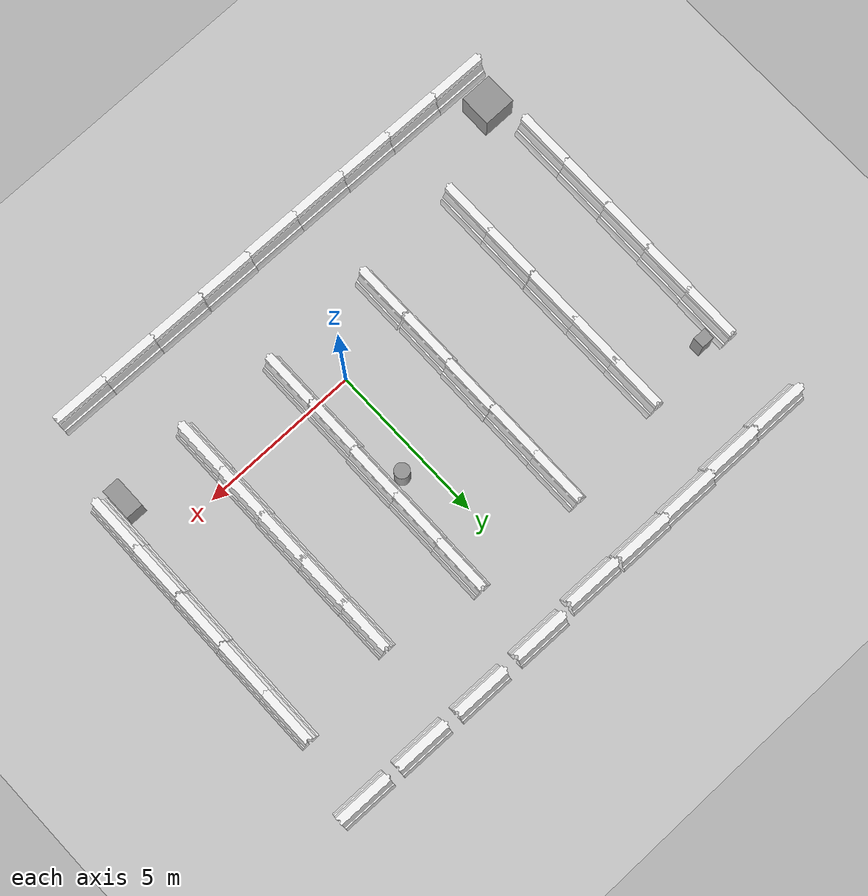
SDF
<sdf version="1.7">
 <world name="default">
  <spherical_coordinates>
   <surface_model>EARTH_WGS84</surface_model>
   <latitude_deg>38.1615</latitude_deg>
   <longitude_deg>-122.455</longitude_deg>
   <elevation>488</elevation>
   <heading_deg>180</heading_deg>
  </spherical_coordinates>
  <light name="sun" type="directional">
   <pose>0 0 10 0 -0 0</pose>
   <diffuse>0.8 0.8 0.8 1</diffuse>
   <specular>0.2 0.2 0.2 1</specular>
   <attenuation>
    <range>1000</range>
    <constant>0.9</constant>
    <linear>0.01</linear>
    <quadratic>0.001</quadratic>
   </attenuation>
   <direction>-0.5 0.1 -0.9</direction>
   <spot><inner_angle>0</inner_angle><outer_angle>0</outer_angle><falloff>0</falloff></spot>
  </light>
  <model name="ground_plane">
   <static>1</static>
   <link name="link">
    <collision name="collision">
     <geometry><plane><normal>0 0 1</normal><size>100 100</size></plane></geometry>
     <surface><friction><ode><mu>100</mu><mu2>50</mu2></ode></friction></surface>
    </collision>
    <visual name="visual">
     <cast_shadows>0</cast_shadows>
     <geometry><plane><normal>0 0 1</normal><size>100 100</size></plane></geometry>
     <material>
      <script><uri>file://media/materials/scripts/gazebo.material</uri><name>Gazebo/Grey</name></script>
     </material>
    </visual>
   </link>
  </model>
  <gravity>0 0 -9.8</gravity>
  <magnetic_field>6e-06 2.3e-05 -4.2e-05</magnetic_field>
  <atmosphere type="adiabatic"/>
  <physics type="ode">
   <max_step_size>0.001</max_step_size>
   <real_time_factor>1</real_time_factor>
   <real_time_update_rate>1000</real_time_update_rate>
  </physics>
  <scene><ambient>0.4 0.4 0.4 1</ambient><background>0.7 0.7 0.7 1</background><shadows>1</shadows></scene>
  <audio><device>default</device></audio>
  <spherical_coordinates>
   <surface_model>EARTH_WGS84</surface_model>
   <latitude_deg>0</latitude_deg>
   <longitude_deg>0</longitude_deg>
   <elevation>0</elevation>
   <heading_deg>0</heading_deg>
  </spherical_coordinates>
  <model name="drc_practice_white_jersey_barrier">
   <static>1</static>
   <link name="link">
    <visual name="visual">
     <geometry>
      <mesh><uri>model://drc_practice_white_jersey_barrier/meshes/jersey_barrier.dae</uri></mesh>
     </geometry>
    </visual>
    <collision name="collision">
     <geometry>
      <mesh><uri>model://drc_practice_white_jersey_barrier/meshes/jersey_barrier.dae</uri></mesh>
     </geometry>
    </collision>
   </link>
   <pose>-2.31285 0.865161 0 0 -0 0</pose>
  </model>
  <model name="drc_practice_white_jersey_barrier_clone">
   <static>1</static>
   <link name="link">
    <visual name="visual">
     <geometry>
      <mesh><uri>model://drc_practice_white_jersey_barrier/meshes/jersey_barrier.dae</uri></mesh>
     </geometry>
    </visual>
    <collision name="collision">
     <geometry>
      <mesh><uri>model://drc_practice_white_jersey_barrier/meshes/jersey_barrier.dae</uri></mesh>
     </geometry>
    </collision>
   </link>
   <pose>-2.25935 2.61258 0.035484 0 -0 0</pose>
  </model>
  <model name="drc_practice_white_jersey_barrier_clone_clone">
   <static>1</static>
   <link name="link">
    <visual name="visual">
     <geometry>
      <mesh><uri>model://drc_practice_white_jersey_barrier/meshes/jersey_barrier.dae</uri></mesh>
     </geometry>
    </visual>
    <collision name="collision">
     <geometry>
      <mesh><uri>model://drc_practice_white_jersey_barrier/meshes/jersey_barrier.dae</uri></mesh>
     </geometry>
    </collision>
   </link>
   <pose>-2.2827 4.34486 0 0 -0 0</pose>
  </model>
  <model name="drc_practice_white_jersey_barrier_clone_clone_0">
   <static>1</static>
   <link name="link">
    <visual name="visual">
     <geometry>
      <mesh><uri>model://drc_practice_white_jersey_barrier/meshes/jersey_barrier.dae</uri></mesh>
     </geometry>
    </visual>
    <collision name="collision">
     <geometry>
      <mesh><uri>model://drc_practice_white_jersey_barrier/meshes/jersey_barrier.dae</uri></mesh>
     </geometry>
    </collision>
   </link>
   <pose>-2.26451 6.07905 0 0 -0 0</pose>
  </model>
  <model name="drc_practice_white_jersey_barrier_clone_clone_1">
   <static>1</static>
   <link name="link">
    <visual name="visual">
     <geometry>
      <mesh><uri>model://drc_practice_white_jersey_barrier/meshes/jersey_barrier.dae</uri></mesh>
     </geometry>
    </visual>
    <collision name="collision">
     <geometry>
      <mesh><uri>model://drc_practice_white_jersey_barrier/meshes/jersey_barrier.dae</uri></mesh>
     </geometry>
    </collision>
   </link>
   <pose>-2.30543 -0.940519 0 0 -0 0</pose>
  </model>
  <model name="drc_practice_white_jersey_barrier_clone_clone_2">
   <static>1</static>
   <link name="link">
    <visual name="visual">
     <geometry>
      <mesh><uri>model://drc_practice_white_jersey_barrier/meshes/jersey_barrier.dae</uri></mesh>
     </geometry>
    </visual>
    <collision name="collision">
     <geometry>
      <mesh><uri>model://drc_practice_white_jersey_barrier/meshes/jersey_barrier.dae</uri></mesh>
     </geometry>
    </collision>
   </link>
   <pose>1.23085 0.885445 0 0 -0 0</pose>
  </model>
  <model name="drc_practice_white_jersey_barrier_clone_clone_3">
   <static>1</static>
   <link name="link">
    <visual name="visual">
     <geometry>
      <mesh><uri>model://drc_practice_white_jersey_barrier/meshes/jersey_barrier.dae</uri></mesh>
     </geometry>
    </visual>
    <collision name="collision">
     <geometry>
      <mesh><uri>model://drc_practice_white_jersey_barrier/meshes/jersey_barrier.dae</uri></mesh>
     </geometry>
    </collision>
   </link>
   <pose>1.29134 2.61106 0 0 -0 0</pose>
  </model>
  <model name="drc_practice_white_jersey_barrier_clone_clone_4">
   <static>1</static>
   <link name="link">
    <visual name="visual">
     <geometry>
      <mesh><uri>model://drc_practice_white_jersey_barrier/meshes/jersey_barrier.dae</uri></mesh>
     </geometry>
    </visual>
    <collision name="collision">
     <geometry>
      <mesh><uri>model://drc_practice_white_jersey_barrier/meshes/jersey_barrier.dae</uri></mesh>
     </geometry>
    </collision>
   </link>
   <pose>1.28411 4.31775 0 0 -0 0</pose>
  </model>
  <model name="drc_practice_white_jersey_barrier_clone_clone_5">
   <static>1</static>
   <link name="link">
    <visual name="visual">
     <geometry>
      <mesh><uri>model://drc_practice_white_jersey_barrier/meshes/jersey_barrier.dae</uri></mesh>
     </geometry>
    </visual>
    <collision name="collision">
     <geometry>
      <mesh><uri>model://drc_practice_white_jersey_barrier/meshes/jersey_barrier.dae</uri></mesh>
     </geometry>
    </collision>
   </link>
   <pose>1.30418 6.05205 0 0 -0 0</pose>
  </model>
  <model name="drc_practice_white_jersey_barrier_clone_clone_6">
   <static>1</static>
   <link name="link">
    <visual name="visual">
     <geometry>
      <mesh><uri>model://drc_practice_white_jersey_barrier/meshes/jersey_barrier.dae</uri></mesh>
     </geometry>
    </visual>
    <collision name="collision">
     <geometry>
      <mesh><uri>model://drc_practice_white_jersey_barrier/meshes/jersey_barrier.dae</uri></mesh>
     </geometry>
    </collision>
   </link>
   <pose>1.23925 -0.870586 0 0 -0 0</pose>
  </model>
  <model name="drc_practice_white_jersey_barrier_clone_clone_6_clone">
   <static>1</static>
   <link name="link">
    <visual name="visual">
     <geometry>
      <mesh><uri>model://drc_practice_white_jersey_barrier/meshes/jersey_barrier.dae</uri></mesh>
     </geometry>
    </visual>
    <collision name="collision">
     <geometry>
      <mesh><uri>model://drc_practice_white_jersey_barrier/meshes/jersey_barrier.dae</uri></mesh>
     </geometry>
    </collision>
   </link>
   <pose>4.25751 -1.09658 0 0 -0 0</pose>
  </model>
  <model name="drc_practice_white_jersey_barrier_clone_clone_6_clone_0">
   <static>1</static>
   <link name="link">
    <visual name="visual">
     <geometry>
      <mesh><uri>model://drc_practice_white_jersey_barrier/meshes/jersey_barrier.dae</uri></mesh>
     </geometry>
    </visual>
    <collision name="collision">
     <geometry>
      <mesh><uri>model://drc_practice_white_jersey_barrier/meshes/jersey_barrier.dae</uri></mesh>
     </geometry>
    </collision>
   </link>
   <pose>4.27538 0.590977 0 0 -0 0</pose>
  </model>
  <model name="drc_practice_white_jersey_barrier_clone_clone_6_clone_1">
   <static>1</static>
   <link name="link">
    <visual name="visual">
     <geometry>
      <mesh><uri>model://drc_practice_white_jersey_barrier/meshes/jersey_barrier.dae</uri></mesh>
     </geometry>
    </visual>
    <collision name="collision">
     <geometry>
      <mesh><uri>model://drc_practice_white_jersey_barrier/meshes/jersey_barrier.dae</uri></mesh>
     </geometry>
    </collision>
   </link>
   <pose>4.30112 2.23311 0 0 -0 0</pose>
  </model>
  <model name="drc_practice_white_jersey_barrier_clone_clone_6_clone_2">
   <static>1</static>
   <link name="link">
    <visual name="visual">
     <geometry>
      <mesh><uri>model://drc_practice_white_jersey_barrier/meshes/jersey_barrier.dae</uri></mesh>
     </geometry>
    </visual>
    <collision name="collision">
     <geometry>
      <mesh><uri>model://drc_practice_white_jersey_barrier/meshes/jersey_barrier.dae</uri></mesh>
     </geometry>
    </collision>
   </link>
   <pose>4.30581 3.85848 0 0 -0 0</pose>
  </model>
  <model name="drc_practice_white_jersey_barrier_clone_clone_6_clone_3">
   <static>1</static>
   <link name="link">
    <visual name="visual">
     <geometry>
      <mesh><uri>model://drc_practice_white_jersey_barrier/meshes/jersey_barrier.dae</uri></mesh>
     </geometry>
    </visual>
    <collision name="collision">
     <geometry>
      <mesh><uri>model://drc_practice_white_jersey_barrier/meshes/jersey_barrier.dae</uri></mesh>
     </geometry>
    </collision>
   </link>
   <pose>4.29986 5.48081 0 0 -0 0</pose>
  </model>
  <model name="drc_practice_white_jersey_barrier_clone_clone_6_clone_4">
   <static>1</static>
   <link name="link">
    <visual name="visual">
     <geometry>
      <mesh><uri>model://drc_practice_white_jersey_barrier/meshes/jersey_barrier.dae</uri></mesh>
     </geometry>
    </visual>
    <collision name="collision">
     <geometry>
      <mesh><uri>model://drc_practice_white_jersey_barrier/meshes/jersey_barrier.dae</uri></mesh>
     </geometry>
    </collision>
   </link>
   <pose>7.3645 -1.096 0 0 -0 0</pose>
  </model>
  <model name="drc_practice_white_jersey_barrier_clone_clone_6_clone_5">
   <static>1</static>
   <link name="link">
    <visual name="visual">
     <geometry>
      <mesh><uri>model://drc_practice_white_jersey_barrier/meshes/jersey_barrier.dae</uri></mesh>
     </geometry>
    </visual>
    <collision name="collision">
     <geometry>
      <mesh><uri>model://drc_practice_white_jersey_barrier/meshes/jersey_barrier.dae</uri></mesh>
     </geometry>
    </collision>
   </link>
   <pose>7.38503 0.595216 0 0 -0 0</pose>
  </model>
  <model name="drc_practice_white_jersey_barrier_clone_clone_6_clone_6">
   <static>1</static>
   <link name="link">
    <visual name="visual">
     <geometry>
      <mesh><uri>model://drc_practice_white_jersey_barrier/meshes/jersey_barrier.dae</uri></mesh>
     </geometry>
    </visual>
    <collision name="collision">
     <geometry>
      <mesh><uri>model://drc_practice_white_jersey_barrier/meshes/jersey_barrier.dae</uri></mesh>
     </geometry>
    </collision>
   </link>
   <pose>7.41126 2.38238 0 0 -0 0</pose>
  </model>
  <model name="drc_practice_white_jersey_barrier_clone_clone_6_clone_7">
   <static>1</static>
   <link name="link">
    <visual name="visual">
     <geometry>
      <mesh><uri>model://drc_practice_white_jersey_barrier/meshes/jersey_barrier.dae</uri></mesh>
     </geometry>
    </visual>
    <collision name="collision">
     <geometry>
      <mesh><uri>model://drc_practice_white_jersey_barrier/meshes/jersey_barrier.dae</uri></mesh>
     </geometry>
    </collision>
   </link>
   <pose>7.43491 4.1441 0 0 -0 0</pose>
  </model>
  <model name="drc_practice_white_jersey_barrier_clone_clone_6_clone_8">
   <static>1</static>
   <link name="link">
    <visual name="visual">
     <geometry>
      <mesh><uri>model://drc_practice_white_jersey_barrier/meshes/jersey_barrier.dae</uri></mesh>
     </geometry>
    </visual>
    <collision name="collision">
     <geometry>
      <mesh><uri>model://drc_practice_white_jersey_barrier/meshes/jersey_barrier.dae</uri></mesh>
     </geometry>
    </collision>
   </link>
   <pose>7.44643 5.87903 0 0 -0 0</pose>
  </model>
  <model name="drc_practice_white_jersey_barrier_clone_clone_6_clone_9">
   <static>1</static>
   <link name="link">
    <visual name="visual">
     <geometry>
      <mesh><uri>model://drc_practice_white_jersey_barrier/meshes/jersey_barrier.dae</uri></mesh>
     </geometry>
    </visual>
    <collision name="collision">
     <geometry>
      <mesh><uri>model://drc_practice_white_jersey_barrier/meshes/jersey_barrier.dae</uri></mesh>
     </geometry>
    </collision>
   </link>
   <pose>-5.69564 -1.07834 0 0 -0 0</pose>
  </model>
  <model name="drc_practice_white_jersey_barrier_clone_clone_6_clone_10">
   <static>1</static>
   <link name="link">
    <visual name="visual">
     <geometry>
      <mesh><uri>model://drc_practice_white_jersey_barrier/meshes/jersey_barrier.dae</uri></mesh>
     </geometry>
    </visual>
    <collision name="collision">
     <geometry>
      <mesh><uri>model://drc_practice_white_jersey_barrier/meshes/jersey_barrier.dae</uri></mesh>
     </geometry>
    </collision>
   </link>
   <pose>-5.68357 0.600841 0 0 -0 0</pose>
  </model>
  <model name="drc_practice_white_jersey_barrier_clone_clone_6_clone_11">
   <static>1</static>
   <link name="link">
    <visual name="visual">
     <geometry>
      <mesh><uri>model://drc_practice_white_jersey_barrier/meshes/jersey_barrier.dae</uri></mesh>
     </geometry>
    </visual>
    <collision name="collision">
     <geometry>
      <mesh><uri>model://drc_practice_white_jersey_barrier/meshes/jersey_barrier.dae</uri></mesh>
     </geometry>
    </collision>
   </link>
   <pose>-5.66235 2.37335 0 0 -0 0</pose>
  </model>
  <model name="drc_practice_white_jersey_barrier_clone_clone_6_clone_12">
   <static>1</static>
   <link name="link">
    <visual name="visual">
     <geometry>
      <mesh><uri>model://drc_practice_white_jersey_barrier/meshes/jersey_barrier.dae</uri></mesh>
     </geometry>
    </visual>
    <collision name="collision">
     <geometry>
      <mesh><uri>model://drc_practice_white_jersey_barrier/meshes/jersey_barrier.dae</uri></mesh>
     </geometry>
    </collision>
   </link>
   <pose>-5.65778 4.03693 0 0 -0 0</pose>
  </model>
  <model name="drc_practice_white_jersey_barrier_clone_clone_6_clone_13">
   <static>1</static>
   <link name="link">
    <visual name="visual">
     <geometry>
      <mesh><uri>model://drc_practice_white_jersey_barrier/meshes/jersey_barrier.dae</uri></mesh>
     </geometry>
    </visual>
    <collision name="collision">
     <geometry>
      <mesh><uri>model://drc_practice_white_jersey_barrier/meshes/jersey_barrier.dae</uri></mesh>
     </geometry>
    </collision>
   </link>
   <pose>-5.64524 5.64176 0 0 -0 0</pose>
  </model>
  <model name="drc_practice_white_jersey_barrier_clone_clone_6_clone_14">
   <static>1</static>
   <link name="link">
    <visual name="visual">
     <geometry>
      <mesh><uri>model://drc_practice_white_jersey_barrier/meshes/jersey_barrier.dae</uri></mesh>
     </geometry>
    </visual>
    <collision name="collision">
     <geometry>
      <mesh><uri>model://drc_practice_white_jersey_barrier/meshes/jersey_barrier.dae</uri></mesh>
     </geometry>
    </collision>
   </link>
   <pose>-8.63834 -1.11126 0 0 -0 0</pose>
  </model>
  <model name="drc_practice_white_jersey_barrier_clone_clone_6_clone_15">
   <static>1</static>
   <link name="link">
    <visual name="visual">
     <geometry>
      <mesh><uri>model://drc_practice_white_jersey_barrier/meshes/jersey_barrier.dae</uri></mesh>
     </geometry>
    </visual>
    <collision name="collision">
     <geometry>
      <mesh><uri>model://drc_practice_white_jersey_barrier/meshes/jersey_barrier.dae</uri></mesh>
     </geometry>
    </collision>
   </link>
   <pose>-8.61894 0.634928 0 0 -0 0</pose>
  </model>
  <model name="drc_practice_white_jersey_barrier_clone_clone_6_clone_16">
   <static>1</static>
   <link name="link">
    <visual name="visual">
     <geometry>
      <mesh><uri>model://drc_practice_white_jersey_barrier/meshes/jersey_barrier.dae</uri></mesh>
     </geometry>
    </visual>
    <collision name="collision">
     <geometry>
      <mesh><uri>model://drc_practice_white_jersey_barrier/meshes/jersey_barrier.dae</uri></mesh>
     </geometry>
    </collision>
   </link>
   <pose>-8.58187 2.3102 0 0 -0 0</pose>
  </model>
  <model name="drc_practice_white_jersey_barrier_clone_clone_6_clone_17">
   <static>1</static>
   <link name="link">
    <visual name="visual">
     <geometry>
      <mesh><uri>model://drc_practice_white_jersey_barrier/meshes/jersey_barrier.dae</uri></mesh>
     </geometry>
    </visual>
    <collision name="collision">
     <geometry>
      <mesh><uri>model://drc_practice_white_jersey_barrier/meshes/jersey_barrier.dae</uri></mesh>
     </geometry>
    </collision>
   </link>
   <pose>-8.55089 3.97027 0 0 -0 0</pose>
  </model>
  <model name="drc_practice_white_jersey_barrier_clone_clone_6_clone_18">
   <static>1</static>
   <link name="link">
    <visual name="visual">
     <geometry>
      <mesh><uri>model://drc_practice_white_jersey_barrier/meshes/jersey_barrier.dae</uri></mesh>
     </geometry>
    </visual>
    <collision name="collision">
     <geometry>
      <mesh><uri>model://drc_practice_white_jersey_barrier/meshes/jersey_barrier.dae</uri></mesh>
     </geometry>
    </collision>
   </link>
   <pose>-8.5237 5.61418 0 0 -0 0</pose>
  </model>
  <model name="drc_practice_white_jersey_barrier_clone_clone_6_clone_9_clone">
   <static>1</static>
   <link name="link">
    <visual name="visual">
     <geometry>
      <mesh><uri>model://drc_practice_white_jersey_barrier/meshes/jersey_barrier.dae</uri></mesh>
     </geometry>
    </visual>
    <collision name="collision">
     <geometry>
      <mesh><uri>model://drc_practice_white_jersey_barrier/meshes/jersey_barrier.dae</uri></mesh>
     </geometry>
    </collision>
   </link>
   <pose>-8.07962 -4.15786 0 0 0 -1.57776</pose>
  </model>
  <model name="drc_practice_white_jersey_barrier_clone_clone_6_clone_9_clone_clone">
   <static>1</static>
   <link name="link">
    <visual name="visual">
     <geometry>
      <mesh><uri>model://drc_practice_white_jersey_barrier/meshes/jersey_barrier.dae</uri></mesh>
     </geometry>
    </visual>
    <collision name="collision">
     <geometry>
      <mesh><uri>model://drc_practice_white_jersey_barrier/meshes/jersey_barrier.dae</uri></mesh>
     </geometry>
    </collision>
   </link>
   <pose>-6.3369 -4.18924 0 0 0 -1.57776</pose>
  </model>
  <model name="drc_practice_white_jersey_barrier_clone_clone_6_clone_9_clone_clone_0">
   <static>1</static>
   <link name="link">
    <visual name="visual">
     <geometry>
      <mesh><uri>model://drc_practice_white_jersey_barrier/meshes/jersey_barrier.dae</uri></mesh>
     </geometry>
    </visual>
    <collision name="collision">
     <geometry>
      <mesh><uri>model://drc_practice_white_jersey_barrier/meshes/jersey_barrier.dae</uri></mesh>
     </geometry>
    </collision>
   </link>
   <pose>-4.63017 -4.22082 0 0 0 -1.57776</pose>
  </model>
  <model name="drc_practice_white_jersey_barrier_clone_clone_6_clone_9_clone_clone_1">
   <static>1</static>
   <link name="link">
    <visual name="visual">
     <geometry>
      <mesh><uri>model://drc_practice_white_jersey_barrier/meshes/jersey_barrier.dae</uri></mesh>
     </geometry>
    </visual>
    <collision name="collision">
     <geometry>
      <mesh><uri>model://drc_practice_white_jersey_barrier/meshes/jersey_barrier.dae</uri></mesh>
     </geometry>
    </collision>
   </link>
   <pose>-2.89061 -4.25621 0 0 0 -1.57776</pose>
  </model>
  <model name="drc_practice_white_jersey_barrier_clone_clone_6_clone_9_clone_clone_2">
   <static>1</static>
   <link name="link">
    <visual name="visual">
     <geometry>
      <mesh><uri>model://drc_practice_white_jersey_barrier/meshes/jersey_barrier.dae</uri></mesh>
     </geometry>
    </visual>
    <collision name="collision">
     <geometry>
      <mesh><uri>model://drc_practice_white_jersey_barrier/meshes/jersey_barrier.dae</uri></mesh>
     </geometry>
    </collision>
   </link>
   <pose>-1.15668 -4.27796 0 0 0 -1.57776</pose>
  </model>
  <model name="drc_practice_white_jersey_barrier_clone_clone_6_clone_9_clone_clone_3">
   <static>1</static>
   <link name="link">
    <visual name="visual">
     <geometry>
      <mesh><uri>model://drc_practice_white_jersey_barrier/meshes/jersey_barrier.dae</uri></mesh>
     </geometry>
    </visual>
    <collision name="collision">
     <geometry>
      <mesh><uri>model://drc_practice_white_jersey_barrier/meshes/jersey_barrier.dae</uri></mesh>
     </geometry>
    </collision>
   </link>
   <pose>0.566179 -4.27741 0 0 0 -1.57776</pose>
  </model>
  <model name="drc_practice_white_jersey_barrier_clone_clone_6_clone_9_clone_clone_4">
   <static>1</static>
   <link name="link">
    <visual name="visual">
     <geometry>
      <mesh><uri>model://drc_practice_white_jersey_barrier/meshes/jersey_barrier.dae</uri></mesh>
     </geometry>
    </visual>
    <collision name="collision">
     <geometry>
      <mesh><uri>model://drc_practice_white_jersey_barrier/meshes/jersey_barrier.dae</uri></mesh>
     </geometry>
    </collision>
   </link>
   <pose>2.32872 -4.28848 0 0 0 -1.57776</pose>
  </model>
  <model name="drc_practice_white_jersey_barrier_clone_clone_6_clone_9_clone_clone_5">
   <static>1</static>
   <link name="link">
    <visual name="visual">
     <geometry>
      <mesh><uri>model://drc_practice_white_jersey_barrier/meshes/jersey_barrier.dae</uri></mesh>
     </geometry>
    </visual>
    <collision name="collision">
     <geometry>
      <mesh><uri>model://drc_practice_white_jersey_barrier/meshes/jersey_barrier.dae</uri></mesh>
     </geometry>
    </collision>
   </link>
   <pose>4.07906 -4.31749 0 0 0 -1.57776</pose>
  </model>
  <model name="drc_practice_white_jersey_barrier_clone_clone_6_clone_9_clone_clone_6">
   <static>1</static>
   <link name="link">
    <visual name="visual">
     <geometry>
      <mesh><uri>model://drc_practice_white_jersey_barrier/meshes/jersey_barrier.dae</uri></mesh>
     </geometry>
    </visual>
    <collision name="collision">
     <geometry>
      <mesh><uri>model://drc_practice_white_jersey_barrier/meshes/jersey_barrier.dae</uri></mesh>
     </geometry>
    </collision>
   </link>
   <pose>5.82105 -4.3432 0 0 0 -1.57776</pose>
  </model>
  <model name="unit_box">
   <pose>-8.25029 -3.04159 0.499995 0 1e-05 0</pose>
   <link name="link">
    <inertial>
     <mass>1</mass>
     <inertia>
      <ixx>0.166667</ixx>
      <ixy>0</ixy>
      <ixz>0</ixz>
      <iyy>0.166667</iyy>
      <iyz>0</iyz>
      <izz>0.166667</izz>
     </inertia>
    </inertial>
    <collision name="collision"><geometry><box><size>1 1 1</size></box></geometry></collision>
    <visual name="visual">
     <geometry><box><size>1 1 1</size></box></geometry>
     <material>
      <script><name>Gazebo/Grey</name><uri>file://media/materials/scripts/gazebo.material</uri></script>
     </material>
    </visual>
   </link>
  </model>
  <model name="unit_cylinder">
   <pose>0.725537 3.09613 0.5 1e-06 -0 4.6e-05</pose>
   <link name="link">
    <inertial>
     <mass>1</mass>
     <inertia><ixx>0.145833</ixx><ixy>0</ixy><ixz>0</ixz><iyy>0.145833</iyy><iyz>0</iyz><izz>0.125</izz></inertia>
    </inertial>
    <collision name="collision">
     <geometry><cylinder><radius>0.232848</radius><length>1</length></cylinder></geometry>
    </collision>
    <visual name="visual">
     <geometry><cylinder><radius>0.232848</radius><length>1</length></cylinder></geometry>
     <material>
      <script><name>Gazebo/Grey</name><uri>file://media/materials/scripts/gazebo.material</uri></script>
     </material>
    </visual>
   </link>
  </model>
  <model name="unit_box_0">
   <pose>6.76673 -1.49711 0.5 0 -0 -0.004712</pose>
   <link name="link">
    <inertial>
     <mass>1</mass>
     <inertia>
      <ixx>0.166667</ixx>
      <ixy>0</ixy>
      <ixz>0</ixz>
      <iyy>0.166667</iyy>
      <iyz>0</iyz>
      <izz>0.166667</izz>
     </inertia>
    </inertial>
    <collision name="collision"><geometry><box><size>0.544385 1 1</size></box></geometry></collision>
    <visual name="visual">
     <geometry><box><size>0.544385 1 1</size></box></geometry>
     <material>
      <script><name>Gazebo/Grey</name><uri>file://media/materials/scripts/gazebo.material</uri></script>
     </material>
    </visual>
   </link>
  </model>
  <model name="unit_box_1">
   <pose>-7.84921 6.02276 0.499999 -3e-06 -3e-06 0.000183</pose>
   <link name="link">
    <inertial>
     <mass>1</mass>
     <inertia>
      <ixx>0.166667</ixx>
      <ixy>0</ixy>
      <ixz>0</ixz>
      <iyy>0.166667</iyy>
      <iyz>0</iyz>
      <izz>0.166667</izz>
     </inertia>
    </inertial>
    <collision name="collision"><geometry><box><size>0.421524 0.359435 1</size></box></geometry></collision>
    <visual name="visual">
     <geometry><box><size>0.421524 0.359435 1</size></box></geometry>
     <material>
      <script><name>Gazebo/Grey</name><uri>file://media/materials/scripts/gazebo.material</uri></script>
     </material>
    </visual>
   </link>
  </model>
  <model name="drc_practice_white_jersey_barrier_clone_clone_6_clone_9_clone_clone_7">
   <static>1</static>
   <link name="link">
    <visual name="visual">
     <geometry>
      <mesh><uri>model://drc_practice_white_jersey_barrier/meshes/jersey_barrier.dae</uri></mesh>
     </geometry>
    </visual>
    <collision name="collision">
     <geometry>
      <mesh><uri>model://drc_practice_white_jersey_barrier/meshes/jersey_barrier.dae</uri></mesh>
     </geometry>
    </collision>
   </link>
   <pose>-7.99144 8.78449 0 0 0 -1.57776</pose>
  </model>
  <model name="drc_practice_white_jersey_barrier_clone_clone_6_clone_9_clone_clone_8">
   <static>1</static>
   <link name="link">
    <visual name="visual">
     <geometry>
      <mesh><uri>model://drc_practice_white_jersey_barrier/meshes/jersey_barrier.dae</uri></mesh>
     </geometry>
    </visual>
    <collision name="collision">
     <geometry>
      <mesh><uri>model://drc_practice_white_jersey_barrier/meshes/jersey_barrier.dae</uri></mesh>
     </geometry>
    </collision>
   </link>
   <pose>-6.22793 8.79503 0 0 0 -1.57776</pose>
  </model>
  <model name="drc_practice_white_jersey_barrier_clone_clone_6_clone_9_clone_clone_9">
   <static>1</static>
   <link name="link">
    <visual name="visual">
     <geometry>
      <mesh><uri>model://drc_practice_white_jersey_barrier/meshes/jersey_barrier.dae</uri></mesh>
     </geometry>
    </visual>
    <collision name="collision">
     <geometry>
      <mesh><uri>model://drc_practice_white_jersey_barrier/meshes/jersey_barrier.dae</uri></mesh>
     </geometry>
    </collision>
   </link>
   <pose>-4.52053 8.84995 0 0 0 -1.57776</pose>
  </model>
  <model name="drc_practice_white_jersey_barrier_clone_clone_6_clone_9_clone_clone_10">
   <static>1</static>
   <link name="link">
    <visual name="visual">
     <geometry>
      <mesh><uri>model://drc_practice_white_jersey_barrier/meshes/jersey_barrier.dae</uri></mesh>
     </geometry>
    </visual>
    <collision name="collision">
     <geometry>
      <mesh><uri>model://drc_practice_white_jersey_barrier/meshes/jersey_barrier.dae</uri></mesh>
     </geometry>
    </collision>
   </link>
   <pose>-2.7794 8.86238 0 0 0 -1.57776</pose>
  </model>
  <model name="drc_practice_white_jersey_barrier_clone_clone_6_clone_9_clone_clone_11">
   <static>1</static>
   <link name="link">
    <visual name="visual">
     <geometry>
      <mesh><uri>model://drc_practice_white_jersey_barrier/meshes/jersey_barrier.dae</uri></mesh>
     </geometry>
    </visual>
    <collision name="collision">
     <geometry>
      <mesh><uri>model://drc_practice_white_jersey_barrier/meshes/jersey_barrier.dae</uri></mesh>
     </geometry>
    </collision>
   </link>
   <pose>-0.949353 8.80643 0 0 0 -1.57776</pose>
  </model>
  <model name="drc_practice_white_jersey_barrier_clone_clone_6_clone_9_clone_clone_12">
   <static>1</static>
   <link name="link">
    <visual name="visual">
     <geometry>
      <mesh><uri>model://drc_practice_white_jersey_barrier/meshes/jersey_barrier.dae</uri></mesh>
     </geometry>
    </visual>
    <collision name="collision">
     <geometry>
      <mesh><uri>model://drc_practice_white_jersey_barrier/meshes/jersey_barrier.dae</uri></mesh>
     </geometry>
    </collision>
   </link>
   <pose>1.07009 8.88354 0 0 0 -1.57776</pose>
  </model>
  <model name="drc_practice_white_jersey_barrier_clone_clone_6_clone_9_clone_clone_13">
   <static>1</static>
   <link name="link">
    <visual name="visual">
     <geometry>
      <mesh><uri>model://drc_practice_white_jersey_barrier/meshes/jersey_barrier.dae</uri></mesh>
     </geometry>
    </visual>
    <collision name="collision">
     <geometry>
      <mesh><uri>model://drc_practice_white_jersey_barrier/meshes/jersey_barrier.dae</uri></mesh>
     </geometry>
    </collision>
   </link>
   <pose>3.23562 8.88601 0 0 0 -1.57776</pose>
  </model>
  <model name="drc_practice_white_jersey_barrier_clone_clone_6_clone_9_clone_clone_14">
   <static>1</static>
   <link name="link">
    <visual name="visual">
     <geometry>
      <mesh><uri>model://drc_practice_white_jersey_barrier/meshes/jersey_barrier.dae</uri></mesh>
     </geometry>
    </visual>
    <collision name="collision">
     <geometry>
      <mesh><uri>model://drc_practice_white_jersey_barrier/meshes/jersey_barrier.dae</uri></mesh>
     </geometry>
    </collision>
   </link>
   <pose>5.35854 8.85438 0 0 0 -1.57776</pose>
  </model>
  <model name="drc_practice_white_jersey_barrier_clone_clone_6_clone_9_clone_clone_15">
   <static>1</static>
   <link name="link">
    <visual name="visual">
     <geometry>
      <mesh><uri>model://drc_practice_white_jersey_barrier/meshes/jersey_barrier.dae</uri></mesh>
     </geometry>
    </visual>
    <collision name="collision">
     <geometry>
      <mesh><uri>model://drc_practice_white_jersey_barrier/meshes/jersey_barrier.dae</uri></mesh>
     </geometry>
    </collision>
   </link>
   <pose>7.42424 8.82935 0 0 0 -1.57776</pose>
  </model>
 </world>
</sdf>
